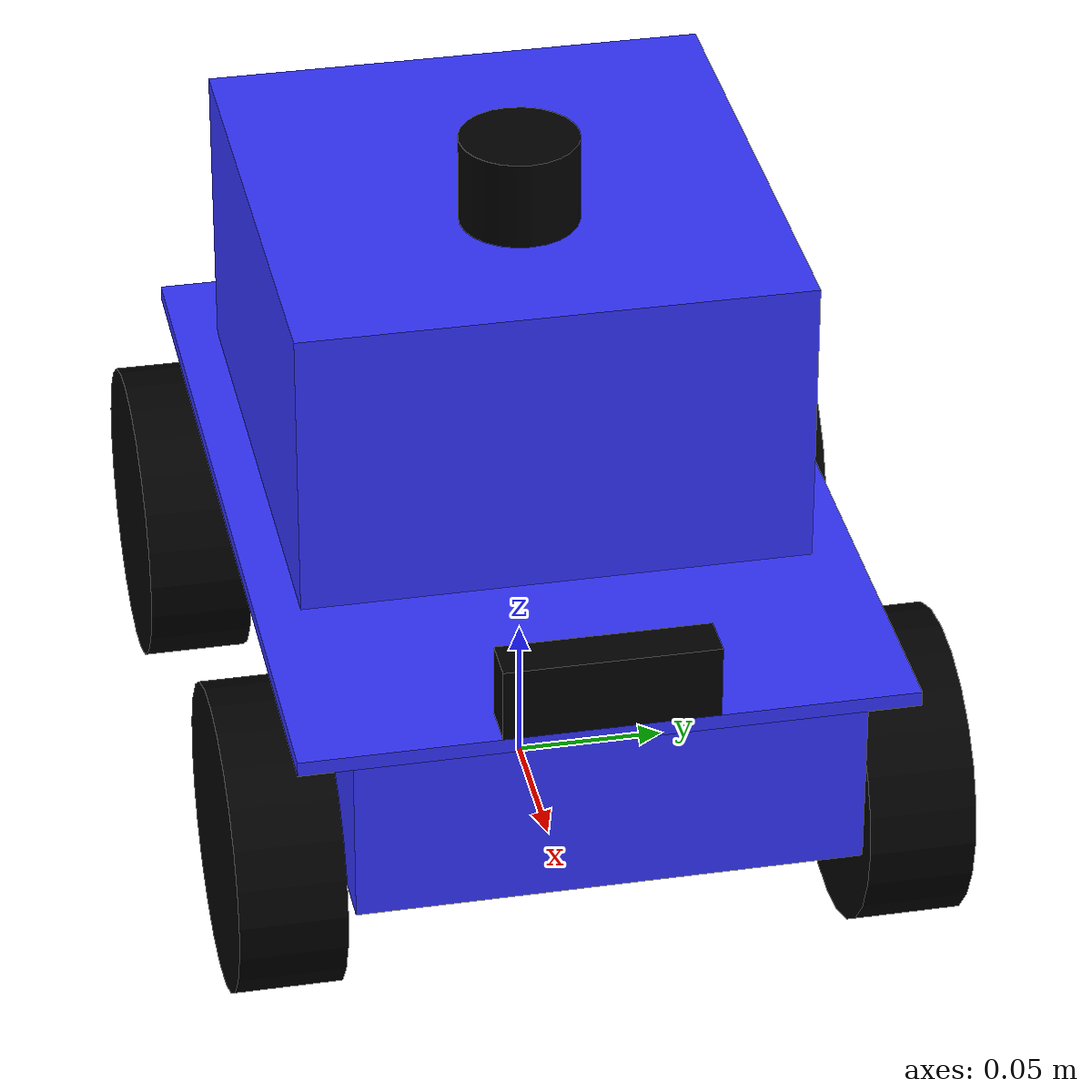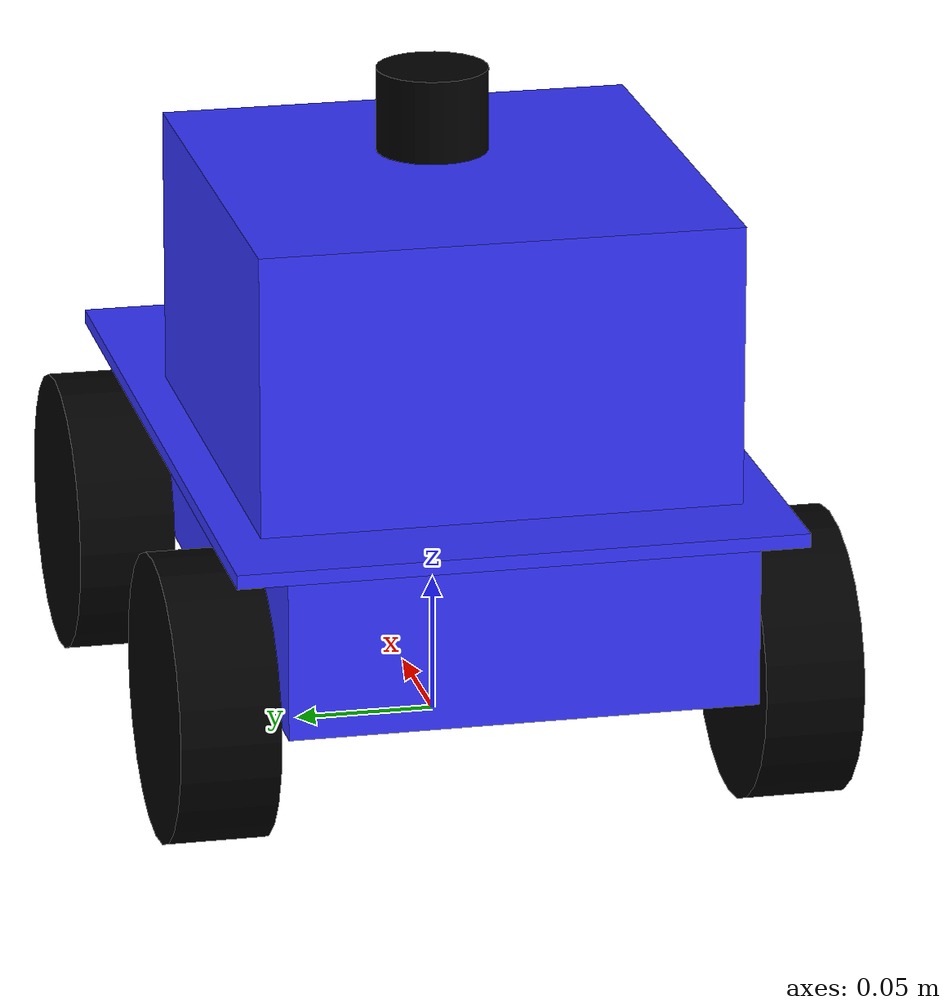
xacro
<?xml version="1.0"?>
<robot xmlns:xacro="http://www.ros.org/wiki/xacro"  name="robot">

    <xacro:arg name="use_ros2_control" default="true"/>
    <xacro:arg name="sim_mode" default="false"/>

    <xacro:include filename="$(find tarobot_one)/description/urdf/my_robot.xacro" />

    <xacro:include filename="$(find tarobot_one)/description/urdf/camera.xacro" />
    <xacro:include filename="$(find tarobot_one)/description/urdf/lidar_ld19.xacro" />
    <xacro:include filename="$(find tarobot_one)/description/urdf/imu_bno055.xacro" />

    <xacro:if value="$(arg use_ros2_control)">
        <xacro:include filename="ros2_control.xacro" />
    </xacro:if>
    <xacro:unless value="$(arg use_ros2_control)">
        <xacro:include filename="4wheel_diff.xacro" />
    </xacro:unless>

</robot>

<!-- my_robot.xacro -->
<robot xmlns:xacro="http://www.ros.org/wiki/xacro">

    <!-- MATERIAL -->
    <material name="blue">
        <color rgba="0.200 0.200 1.000 1.000" />
    </material>

    <material name="black">
        <color rgba="0.000 0.000 0.000 1.000" />
    </material>

    <!-- BASE -->
    <link name="base_footprint">
    </link>

    <joint name="base_joint" type="fixed">
        <parent link="base_footprint"/>
        <child link="base_link"/>
        <origin xyz="0 0 0.05"/>
    </joint>

    <!-- LINK -->
    <link name="base_link">
        <visual>
            <origin xyz="0 0 0.028" rpy="0 0 0" />
            <geometry>
                <box size="0.3 0.165 0.056" />
            </geometry>
            <material name="blue" />
        </visual>
        <inertial>
            <origin xyz="0 0 0.028" rpy="0 0 0" />
            <mass value="1.0" />
            <inertia ixx="${(1.0/12) * (0.056*0.056 + 0.3*0.3)}" ixy="0" ixz="0"
                     iyy="${(1.0/12) * (0.165*0.165 + 0.3*0.3)}" iyz="0"
                     izz="${(1.0/12) * (0.165*0.165 + 0.056*0.056)}" />
        </inertial>
        <collision>
            <origin xyz="0 0 0.028" rpy="0 0 0" />
            <geometry>
                <box size="0.3 0.165 0.056" />
            </geometry>
        </collision>
    </link>

    <gazebo reference="base_link">
        <material>Gazebo/Blue</material>
    </gazebo>

    <link name="mid_link">
        <visual>
            <origin xyz="0 0 0.0025" rpy="0 0 0" />
            <geometry>
                <box size="0.3 0.2 0.005" />
            </geometry>
            <material name="blue" />
        </visual>
        <inertial>
            <origin xyz="0 0 0.0025" rpy="0 0 0" />
            <mass value="0.5" />
            <inertia ixx="${(0.5/12) * (0.005*0.005 + 0.3*0.3)}" ixy="0" ixz="0"
                     iyy="${(0.5/12) * (0.2*0.2 + 0.3*0.3)}" iyz="0"
                     izz="${(0.5/12) * (0.2*0.2 + 0.005*0.005)}" />
        </inertial>
        <collision>
            <origin xyz="0 0 0.0025" rpy="0 0 0"/>
            <geometry>
                <box size="0.3 0.2 0.005"/>
            </geometry>
        </collision>
    </link>

    <gazebo reference="mid_link">
        <material>Gazebo/Blue</material>
    </gazebo>

    <link name="top_link">
        <visual>
            <origin xyz="0 0 0.05" rpy="0 0 0"/>
            <geometry>
                <box size="0.18 0.17 0.1"/>
            </geometry>
            <material name="blue"/>
        </visual>
        <inertial>
            <origin xyz="0 0 0.05" rpy="0 0 0" />
            <mass value="2.0" />
            <inertia ixx="${(2.0/12) * (0.1*0.1 + 0.18*0.18)}" ixy="0" ixz="0"
                     iyy="${(2.0/12) * (0.17*0.17 + 0.18*0.18)}" iyz="0"
                     izz="${(2.0/12) * (0.17*0.17 + 0.1*0.1)}" />
        </inertial>
        <collision>
            <origin xyz="0 0 0.05" rpy="0 0 0"/>
            <geometry>
                <box size="0.18 0.17 0.1"/>
            </geometry>
        </collision>
    </link>

    <gazebo reference="top_link">
        <material>Gazebo/Blue</material>
    </gazebo>

    <xacro:macro name="wheel_link" params="prefix">
        <link name="${prefix}_wheel_link">
            <visual>
                <origin xyz="0 0 0" rpy="${pi / 2.0} 0 0" />
                <geometry>
                    <cylinder radius="0.0508" length="0.035" />
                </geometry>
                <material name="black" />
            </visual>
            <inertial>
                <origin xyz="0 0 0" rpy="${pi / 2.0} 0 0" />
                <mass value="0.2"/>
                <inertia ixx="${(0.2/12) * (3*0.0508*0.0508 + 0.035*0.035)}" ixy="0" ixz="0"
                         iyy="${(0.2/12) * (3*0.0508*0.0508 + 0.035*0.035)}" iyz="0"
                         izz="${(0.2/2) * (0.0508*0.0508)}" />
            </inertial>
            <collision>
                <origin xyz="0 0 0" rpy="${pi / 2.0} 0 0" />
                <geometry>
                    <cylinder radius="0.0508" length="0.035" />
                </geometry>
            </collision>
        </link>
    </xacro:macro>

    <xacro:wheel_link prefix="rr" />
    <xacro:wheel_link prefix="rl" />
    <xacro:wheel_link prefix="fr" />
    <xacro:wheel_link prefix="fl" />

    <gazebo reference="rr_wheel_link">
        <material>Gazebo/Black</material>
    </gazebo>

    <gazebo reference="rl_wheel_link">
        <material>Gazebo/Black</material>
    </gazebo>

    <gazebo reference="fr_wheel_link">
        <material>Gazebo/Black</material>
    </gazebo>

    <gazebo reference="fl_wheel_link">
        <material>Gazebo/Black</material>
    </gazebo>

    <!-- JOINT -->
    <joint name="base_mid" type="fixed">
        <parent link="base_link"/>
        <child link="mid_link"/>
        <origin xyz="0 0 0.056" rpy="0 0 0"/>
    </joint>

    <joint name="mid_top" type="fixed">
        <parent link="mid_link"/>
        <child link="top_link"/>
        <origin xyz="-0.025 0 0.005" rpy="0 0 0"/>
    </joint>

    <joint name="rr_wheel_joint" type="continuous">
        <parent link="base_link"/>
        <child link="rr_wheel_link"/>
        <origin xyz="-0.1 -0.1025 0" rpy="0 0 0"/>
        <axis xyz="0 1 0" />
    </joint>

    <joint name="rl_wheel_joint" type="continuous">
        <parent link="base_link"/>
        <child link="rl_wheel_link"/>
        <origin xyz="-0.1 0.1025 0" rpy="0 0 0"/>
        <axis xyz="0 1 0" />
    </joint>

    <!-- FRONT WHEEL JOINTS (passive, mimic rear wheels) -->
    <joint name="fr_wheel_joint" type="continuous">
        <parent link="base_link"/>
        <child link="fr_wheel_link"/>
        <origin xyz="0.1 -0.1025 0" rpy="0 0 0"/>
        <axis xyz="0 1 0" />
    </joint>

    <joint name="fl_wheel_joint" type="continuous">
        <parent link="base_link"/>
        <child link="fl_wheel_link"/>
        <origin xyz="0.1 0.1025 0" rpy="0 0 0"/>
        <axis xyz="0 1 0" />
    </joint>

</robot>

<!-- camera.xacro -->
<robot xmlns:xacro="http://www.ros.org/wiki/xacro">

    <link name="camera_link">
        <visual>
            <origin xyz="0 0 0.0125" rpy="0 0 0"/>
            <geometry>
                <box size="0.015 0.07 0.025"/>
            </geometry>
            <material name="black"/>
        </visual>
        <inertial>
            <origin xyz="0 0 0.0125" rpy="0 0 0" />
            <mass value="0.05" />
            <inertia ixx="${(0.05/12) * (0.025*0.025 + 0.15*0.15)}" ixy="0" ixz="0"
                     iyy="${(0.05/12) * (0.07*0.07 + 0.15*0.15)}" iyz="0"
                     izz="${(0.05/12) * (0.07*0.07 + 0.025*0.025)}" />
        </inertial>
        <collision>
            <origin xyz="0 0 0.0125" rpy="0 0 0"/>
            <geometry>
                <box size="0.015 0.07 0.025"/>
            </geometry>
        </collision>
    </link>

    <joint name="mid_camera" type="fixed">
        <parent link="mid_link"/>
        <child link="camera_link"/>
        <origin xyz="0.1425 0 0.005" rpy="0 0 0"/>\
    </joint>

    <link name="camera_link_optical"></link>

    <joint name="camera_optical_joint" type="fixed">
        <parent link="camera_link"/>
        <child link="camera_link_optical"/>
        <origin xyz="0 0 0" rpy="${-pi/2} 0 ${-pi/2}"/>
    </joint>

    <gazebo reference="camera_link">
        <material>Gazebo/Black</material>
        <sensor name="camera" type="camera">
            <pose> 0 0 0 0 0 0 </pose>
            <visualize>false</visualize>
            <update_rate>10</update_rate>
            <camera>
                <camera_info_topic>camera/camera_info</camera_info_topic>
                <horizontal_fov>1.089</horizontal_fov>
                <image>
                    <format>R8G8B8</format>
                    <width>640</width>
                    <height>480</height>
                </image>
                <clip>
                    <near>0.05</near>
                    <far>2.1</far>
                </clip>
            </camera>
            <topic>camera/image_raw</topic>
            <gz_frame_id>camera_link_optical</gz_frame_id>
        </sensor>
    </gazebo>

</robot>

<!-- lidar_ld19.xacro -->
<robot xmlns:xacro="http://www.ros.org/wiki/xacro">

    <link name="lidar_link">
        <visual>
            <origin xyz="0 0 0" rpy="0 0 0"/>
            <geometry>
                <cylinder radius="0.02" length="0.03"/>
            </geometry>
            <material name="black"/>
        </visual>
        <inertial>
            <origin xyz="0 0 0" rpy="0 0 0" />
            <mass value="0.2"/>
            <inertia ixx="${(0.2/12) * (3*0.05*0.05 + 0.035*0.035)}" ixy="0" ixz="0"
                        iyy="${(0.2/12) * (3*0.05*0.05 + 0.035*0.035)}" iyz="0"
                        izz="${(0.2/2) * (0.05*0.05)}" />
        </inertial>
        <collision>
            <origin xyz="0 0 0" rpy="0 0 0"/>
            <geometry>
                <cylinder radius="0.02" length="0.03"/>
            </geometry>
        </collision>
    </link>

    <joint name="top_lidar" type="fixed">
        <parent link="top_link"/>
        <child link="lidar_link"/>
        <origin xyz="0.025 0 0.115" rpy="0 0 0"/>
        <axis xyz="0 0 -1" />
    </joint>

    <gazebo reference="lidar_link">
        <material>Gazebo/Black</material>
        <sensor name="laser" type="gpu_lidar">
            <pose> 0 0 0 0 0 0 </pose>
            <visualize>true</visualize>
            <update_rate>5</update_rate>
            <lidar>
                <scan>
                    <horizontal>
                        <samples>360</samples>
                        <min_angle>-3.14</min_angle>
                        <max_angle>3.14</max_angle>
                    </horizontal>
                </scan>
                <range>
                    <min>0.02</min>
                    <max>12</max>
                </range>
            </lidar>
                <topic>scan</topic>
                <gz_frame_id>lidar_link</gz_frame_id>
        </sensor>
    </gazebo>

</robot>

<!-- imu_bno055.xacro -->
<robot xmlns:xacro="http://www.ros.org/wiki/xacro">

    <link name="imu_link">
        <visual>
            <geometry>
                <box size="0.02 0.02 0.005"/>
            </geometry>
            <material name="black">
                <color rgba="0 0 0 1"/>
            </material>
        </visual>
        <collision>
            <geometry>
                <box size="0.02 0.02 0.005"/>
            </geometry>
        </collision>
        <inertial>
            <mass value="0.01"/>
            <inertia ixx="0.0000001" ixy="0" ixz="0"
                     iyy="0.0000001" iyz="0"
                     izz="0.0000001"/>
        </inertial>
    </link>

    <joint name="imu_joint" type="fixed">
        <parent link="top_link"/>
        <child link="imu_link"/>
        <origin xyz="0.025 0 -0.025" rpy="0 0 0"/>
    </joint>

    <gazebo reference="imu_link">
        <material>Gazebo/Black</material>
        <sensor name="imu_sensor" type="imu">
            <always_on>true</always_on>
            <update_rate>100</update_rate>
            <visualize>true</visualize>
            <topic>imu</topic>
            <gz_frame_id>imu_link</gz_frame_id>
            <imu>
                <angular_velocity>
                    <x>
                        <noise type="gaussian">
                            <mean>0.0</mean>
                            <stddev>0.0017</stddev>
                            <bias_mean>0.0</bias_mean>
                            <bias_stddev>5e-5</bias_stddev>
                        </noise>
                    </x>
                    <y>
                        <noise type="gaussian">
                            <mean>0.0</mean>
                            <stddev>0.0017</stddev>
                            <bias_mean>0.0</bias_mean>
                            <bias_stddev>5e-5</bias_stddev>
                        </noise>
                    </y>
                    <z>
                        <noise type="gaussian">
                            <mean>0.0</mean>
                            <stddev>0.0017</stddev>
                            <bias_mean>0.0</bias_mean>
                            <bias_stddev>5e-5</bias_stddev>
                        </noise>
                    </z>
                </angular_velocity>
                <linear_acceleration>
                    <x>
                        <noise type="gaussian">
                            <mean>0.0</mean>
                            <stddev>0.012</stddev>
                            <bias_mean>0.0</bias_mean>
                            <bias_stddev>0.0005</bias_stddev>
                        </noise>
                    </x>
                    <y>
                        <noise type="gaussian">
                            <mean>0.0</mean>
                            <stddev>0.012</stddev>
                            <bias_mean>0.0</bias_mean>
                            <bias_stddev>0.0005</bias_stddev>
                        </noise>
                    </y>
                    <z>
                        <noise type="gaussian">
                            <mean>0.0</mean>
                            <stddev>0.012</stddev>
                            <bias_mean>0.0</bias_mean>
                            <bias_stddev>0.0005</bias_stddev>
                        </noise>
                    </z>
                </linear_acceleration>
            </imu>
        </sensor>
    </gazebo>

</robot>
